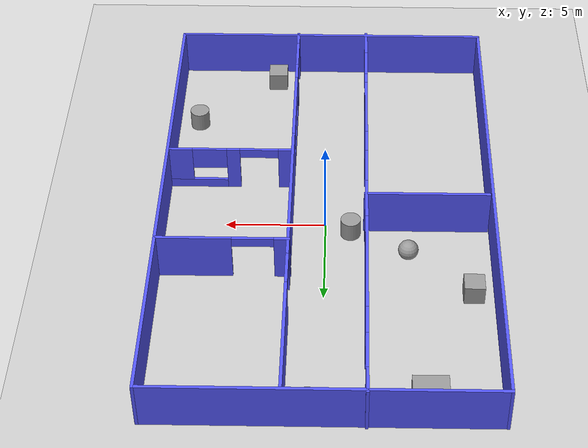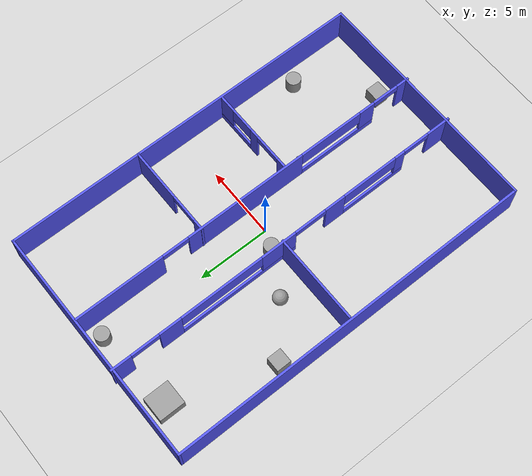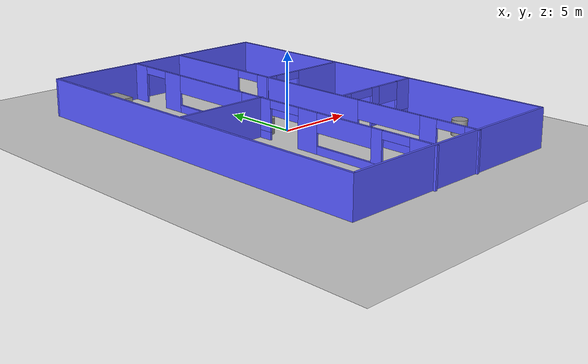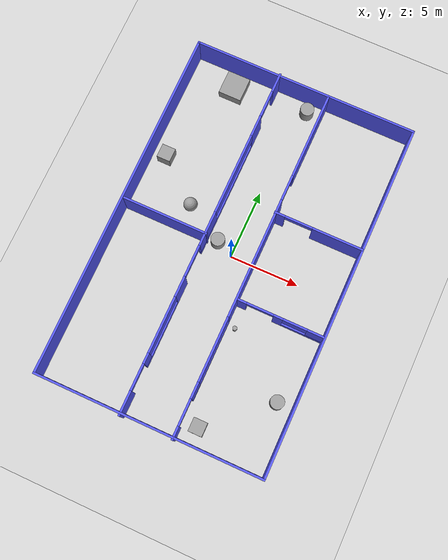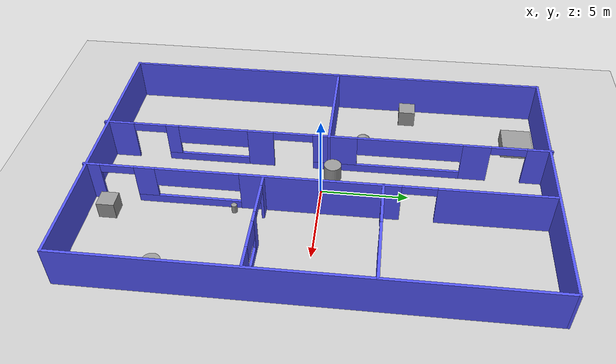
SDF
<sdf version="1.6">
 <world name="default">
  <light name="sun" type="directional">
   <pose>0 0 10 0 -0 0</pose>
   <diffuse>0.8 0.8 0.8 1</diffuse>
   <specular>0.1 0.1 0.1 1</specular>
   <attenuation>
    <range>1000</range>
    <constant>0.9</constant>
    <linear>0.01</linear>
    <quadratic>0.001</quadratic>
   </attenuation>
   <direction>-0.5 0.5 -1</direction>
  </light>
  <model name="ground_plane">
   <static>1</static>
   <link name="link">
    <collision name="collision">
     <geometry><plane><normal>0 0 1</normal><size>100 100</size></plane></geometry>
     <surface><friction><ode><mu>100</mu><mu2>50</mu2></ode></friction></surface>
    </collision>
    <visual name="visual">
     <cast_shadows>0</cast_shadows>
     <geometry><plane><normal>0 0 1</normal><size>100 100</size></plane></geometry>
     <material>
      <script><uri>file://media/materials/scripts/gazebo.material</uri><name>Gazebo/Grey</name></script>
     </material>
    </visual>
   </link>
  </model>
  <gravity>0 0 -9.8</gravity>
  <magnetic_field>6e-06 2.3e-05 -4.2e-05</magnetic_field>
  <atmosphere type="adiabatic"/>
  <physics name="default_physics" default="0" type="ode">
   <max_step_size>0.001</max_step_size>
   <real_time_factor>1</real_time_factor>
   <real_time_update_rate>1000</real_time_update_rate>
  </physics>
  <scene><ambient>0.4 0.4 0.4 1</ambient><background>0.7 0.7 0.7 1</background><shadows>1</shadows></scene>
  <spherical_coordinates>
   <surface_model>EARTH_WGS84</surface_model>
   <latitude_deg>0</latitude_deg>
   <longitude_deg>0</longitude_deg>
   <elevation>0</elevation>
   <heading_deg>0</heading_deg>
  </spherical_coordinates>
  <model name="lab2_model">
   <pose>-0.0842 -0.070064 0 0 -0 0</pose>
   <link name="Wall_15">
    <collision name="Wall_15_Collision">
     <geometry><box><size>25.75 0.15 2.5</size></box></geometry>
     <pose>0 0 1.25 0 -0 0</pose>
    </collision>
    <visual name="Wall_15_Visual">
     <pose>0 0 1.25 0 -0 0</pose>
     <geometry><box><size>25.75 0.15 2.5</size></box></geometry>
     <material>
      <script><uri>file://media/materials/scripts/gazebo.material</uri><name>Gazebo/Grey</name></script>
      <ambient>0.333333 0.345098 1 1</ambient>
     </material>
    </visual>
    <pose>-8.175 0.028249 0 0 0 -1.5708</pose>
   </link>
   <link name="Wall_16">
    <collision name="Wall_16_Collision">
     <geometry><box><size>16.5 0.15 2.5</size></box></geometry>
     <pose>0 0 1.25 0 -0 0</pose>
    </collision>
    <visual name="Wall_16_Visual">
     <pose>0 0 1.25 0 -0 0</pose>
     <geometry><box><size>16.5 0.15 2.5</size></box></geometry>
     <material>
      <script><uri>file://media/materials/scripts/gazebo.material</uri><name>Gazebo/Grey</name></script>
      <ambient>0.333333 0.345098 1 1</ambient>
     </material>
    </visual>
    <pose>0 -12.7718 0 0 -0 0</pose>
   </link>
   <link name="Wall_17">
    <collision name="Wall_17_Collision">
     <geometry><box><size>25.75 0.15 2.5</size></box></geometry>
     <pose>0 0 1.25 0 -0 0</pose>
    </collision>
    <visual name="Wall_17_Visual">
     <pose>0 0 1.25 0 -0 0</pose>
     <geometry><box><size>25.75 0.15 2.5</size></box></geometry>
     <material>
      <script><uri>file://media/materials/scripts/gazebo.material</uri><name>Gazebo/Grey</name></script>
      <ambient>0.333333 0.345098 1 1</ambient>
     </material>
    </visual>
    <pose>8.175 0.028249 0 0 -0 1.5708</pose>
   </link>
   <link name="Wall_18">
    <collision name="Wall_18_Collision">
     <geometry><box><size>16.5 0.15 2.5</size></box></geometry>
     <pose>0 0 1.25 0 -0 0</pose>
    </collision>
    <visual name="Wall_18_Visual">
     <pose>0 0 1.25 0 -0 0</pose>
     <geometry><box><size>16.5 0.15 2.5</size></box></geometry>
     <material>
      <script><uri>file://media/materials/scripts/gazebo.material</uri><name>Gazebo/Grey</name></script>
      <ambient>0.333333 0.345098 1 1</ambient>
     </material>
    </visual>
    <pose>0 12.8282 0 0 -0 3.14159</pose>
   </link>
   <link name="Wall_21">
    <pose>-1.95301 0 0 0 0 -1.5708</pose>
    <visual name="Wall_21_Visual_0">
     <pose>-12.2719 0 1.25 0 -0 0</pose>
     <geometry><box><size>1.45614 0.15 2.5</size></box></geometry>
     <material>
      <script><uri>file://media/materials/scripts/gazebo.material</uri><name>Gazebo/Grey</name></script>
      <ambient>0.333333 0.345098 1 1</ambient>
     </material>
    </visual>
    <collision name="Wall_21_Collision_0">
     <geometry><box><size>1.45614 0.15 2.5</size></box></geometry>
     <pose>-12.2719 0 1.25 0 -0 0</pose>
    </collision>
    <visual name="Wall_21_Visual_1">
     <pose>-8.7536 0 1.25 0 -0 0</pose>
     <geometry><box><size>1.58545 0.15 2.5</size></box></geometry>
     <material>
      <script><uri>file://media/materials/scripts/gazebo.material</uri><name>Gazebo/Grey</name></script>
      <ambient>0.333333 0.345098 1 1</ambient>
     </material>
    </visual>
    <collision name="Wall_21_Collision_1">
     <geometry><box><size>1.58545 0.15 2.5</size></box></geometry>
     <pose>-8.7536 0 1.25 0 -0 0</pose>
    </collision>
    <visual name="Wall_21_Visual_2">
     <pose>3.69169 0 1.25 0 -0 0</pose>
     <geometry><box><size>1.51472 0.15 2.5</size></box></geometry>
     <material>
      <script><uri>file://media/materials/scripts/gazebo.material</uri><name>Gazebo/Grey</name></script>
      <ambient>0.333333 0.345098 1 1</ambient>
     </material>
    </visual>
    <collision name="Wall_21_Collision_2">
     <geometry><box><size>1.51472 0.15 2.5</size></box></geometry>
     <pose>3.69169 0 1.25 0 -0 0</pose>
    </collision>
    <visual name="Wall_21_Visual_3">
     <pose>12.1038 0 1.25 0 -0 0</pose>
     <geometry><box><size>1.79243 0.15 2.5</size></box></geometry>
     <material>
      <script><uri>file://media/materials/scripts/gazebo.material</uri><name>Gazebo/Grey</name></script>
      <ambient>0.333333 0.345098 1 1</ambient>
     </material>
    </visual>
    <collision name="Wall_21_Collision_3">
     <geometry><box><size>1.79243 0.15 2.5</size></box></geometry>
     <pose>12.1038 0 1.25 0 -0 0</pose>
    </collision>
    <visual name="Wall_21_Visual_4">
     <pose>-3.67274 0 0.25 0 -0 0</pose>
     <geometry><box><size>8.57627 0.15 0.5</size></box></geometry>
     <material>
      <script><uri>file://media/materials/scripts/gazebo.material</uri><name>Gazebo/Grey</name></script>
      <ambient>0.333333 0.345098 1 1</ambient>
     </material>
    </visual>
    <collision name="Wall_21_Collision_4">
     <geometry><box><size>8.57627 0.15 0.5</size></box></geometry>
     <pose>-3.67274 0 0.25 0 -0 0</pose>
    </collision>
    <visual name="Wall_21_Visual_5">
     <pose>6.87291 0 0.25 0 -0 0</pose>
     <geometry><box><size>4.84771 0.15 0.5</size></box></geometry>
     <material>
      <script><uri>file://media/materials/scripts/gazebo.material</uri><name>Gazebo/Grey</name></script>
      <ambient>0.333333 0.345098 1 1</ambient>
     </material>
    </visual>
    <collision name="Wall_21_Collision_5">
     <geometry><box><size>4.84771 0.15 0.5</size></box></geometry>
     <pose>6.87291 0 0.25 0 -0 0</pose>
    </collision>
    <visual name="Wall_21_Visual_6">
     <pose>-0.672049 0 1.5 0 -0 0</pose>
     <geometry><box><size>2.57487 0.15 2</size></box></geometry>
     <material>
      <script><uri>file://media/materials/scripts/gazebo.material</uri><name>Gazebo/Grey</name></script>
      <ambient>0.333333 0.345098 1 1</ambient>
     </material>
    </visual>
    <collision name="Wall_21_Collision_6">
     <geometry><box><size>2.57487 0.15 2</size></box></geometry>
     <pose>-0.672049 0 1.5 0 -0 0</pose>
    </collision>
    <visual name="Wall_21_Visual_7">
     <pose>-0.672049 0 1.5 0 -0 0</pose>
     <geometry><box><size>2.57487 0.15 2</size></box></geometry>
     <material>
      <script><uri>file://media/materials/scripts/gazebo.material</uri><name>Gazebo/Grey</name></script>
      <ambient>0.333333 0.345098 1 1</ambient>
     </material>
    </visual>
    <collision name="Wall_21_Collision_7">
     <geometry><box><size>2.57487 0.15 2</size></box></geometry>
     <pose>-0.672049 0 1.5 0 -0 0</pose>
    </collision>
    <visual name="Wall_21_Visual_8">
     <pose>8.91518 0 1.5 0 -0 0</pose>
     <geometry><box><size>0.763166 0.15 2</size></box></geometry>
     <material>
      <script><uri>file://media/materials/scripts/gazebo.material</uri><name>Gazebo/Grey</name></script>
      <ambient>0.333333 0.345098 1 1</ambient>
     </material>
    </visual>
    <collision name="Wall_21_Collision_8">
     <geometry><box><size>0.763166 0.15 2</size></box></geometry>
     <pose>8.91518 0 1.5 0 -0 0</pose>
    </collision>
    <visual name="Wall_21_Visual_9">
     <pose>-4.96018 0 1.9 0 -0 0</pose>
     <geometry><box><size>6.00139 0.15 1.2</size></box></geometry>
     <material>
      <script><uri>file://media/materials/scripts/gazebo.material</uri><name>Gazebo/Grey</name></script>
      <ambient>0.333333 0.345098 1 1</ambient>
     </material>
    </visual>
    <collision name="Wall_21_Collision_9">
     <geometry><box><size>6.00139 0.15 1.2</size></box></geometry>
     <pose>-4.96018 0 1.9 0 -0 0</pose>
    </collision>
    <visual name="Wall_21_Visual_10">
     <pose>6.49132 0 1.9 0 -0 0</pose>
     <geometry><box><size>4.08455 0.15 1.2</size></box></geometry>
     <material>
      <script><uri>file://media/materials/scripts/gazebo.material</uri><name>Gazebo/Grey</name></script>
      <ambient>0.333333 0.345098 1 1</ambient>
     </material>
    </visual>
    <collision name="Wall_21_Collision_10">
     <geometry><box><size>4.08455 0.15 1.2</size></box></geometry>
     <pose>6.49132 0 1.9 0 -0 0</pose>
    </collision>
    <visual name="Wall_21_Visual_11">
     <pose>-10.5451 0 2.25 0 -0 0</pose>
     <geometry><box><size>1.99753 0.15 0.5</size></box></geometry>
     <material>
      <script><uri>file://media/materials/scripts/gazebo.material</uri><name>Gazebo/Grey</name></script>
      <ambient>0.333333 0.345098 1 1</ambient>
     </material>
    </visual>
    <collision name="Wall_21_Collision_11">
     <geometry><box><size>1.99753 0.15 0.5</size></box></geometry>
     <pose>-10.5451 0 2.25 0 -0 0</pose>
    </collision>
    <visual name="Wall_21_Visual_12">
     <pose>1.77486 0 2.25 0 -0 0</pose>
     <geometry><box><size>2.31895 0.15 0.5</size></box></geometry>
     <material>
      <script><uri>file://media/materials/scripts/gazebo.material</uri><name>Gazebo/Grey</name></script>
      <ambient>0.333333 0.345098 1 1</ambient>
     </material>
    </visual>
    <collision name="Wall_21_Collision_12">
     <geometry><box><size>2.31895 0.15 0.5</size></box></geometry>
     <pose>1.77486 0 2.25 0 -0 0</pose>
    </collision>
    <visual name="Wall_21_Visual_13">
     <pose>1.77486 0 2.25 0 -0 0</pose>
     <geometry><box><size>2.31895 0.15 0.5</size></box></geometry>
     <material>
      <script><uri>file://media/materials/scripts/gazebo.material</uri><name>Gazebo/Grey</name></script>
      <ambient>0.333333 0.345098 1 1</ambient>
     </material>
    </visual>
    <collision name="Wall_21_Collision_13">
     <geometry><box><size>2.31895 0.15 0.5</size></box></geometry>
     <pose>1.77486 0 2.25 0 -0 0</pose>
    </collision>
    <visual name="Wall_21_Visual_14">
     <pose>10.2522 0 2.25 0 -0 0</pose>
     <geometry><box><size>1.91081 0.15 0.5</size></box></geometry>
     <material>
      <script><uri>file://media/materials/scripts/gazebo.material</uri><name>Gazebo/Grey</name></script>
      <ambient>0.333333 0.345098 1 1</ambient>
     </material>
    </visual>
    <collision name="Wall_21_Collision_14">
     <geometry><box><size>1.91081 0.15 0.5</size></box></geometry>
     <pose>10.2522 0 2.25 0 -0 0</pose>
    </collision>
   </link>
   <link name="Wall_23">
    <pose>1.80375 -0.085195 0 0 0 -1.5708</pose>
    <visual name="Wall_23_Visual_0">
     <pose>-9.72078 0 1.25 0 -0 0</pose>
     <geometry><box><size>6.30844 0.15 2.5</size></box></geometry>
     <material>
      <script><uri>file://media/materials/scripts/gazebo.material</uri><name>Gazebo/Grey</name></script>
      <ambient>0.333333 0.345098 1 1</ambient>
     </material>
    </visual>
    <collision name="Wall_23_Collision_0">
     <geometry><box><size>6.30844 0.15 2.5</size></box></geometry>
     <pose>-9.72078 0 1.25 0 -0 0</pose>
    </collision>
    <visual name="Wall_23_Visual_1">
     <pose>-0.262365 0 1.25 0 -0 0</pose>
     <geometry><box><size>8.80787 0.15 2.5</size></box></geometry>
     <material>
      <script><uri>file://media/materials/scripts/gazebo.material</uri><name>Gazebo/Grey</name></script>
      <ambient>0.333333 0.345098 1 1</ambient>
     </material>
    </visual>
    <collision name="Wall_23_Collision_1">
     <geometry><box><size>8.80787 0.15 2.5</size></box></geometry>
     <pose>-0.262365 0 1.25 0 -0 0</pose>
    </collision>
    <visual name="Wall_23_Visual_2">
     <pose>12.3876 0 1.25 0 -0 0</pose>
     <geometry><box><size>0.974753 0.15 2.5</size></box></geometry>
     <material>
      <script><uri>file://media/materials/scripts/gazebo.material</uri><name>Gazebo/Grey</name></script>
      <ambient>0.333333 0.345098 1 1</ambient>
     </material>
    </visual>
    <collision name="Wall_23_Collision_2">
     <geometry><box><size>0.974753 0.15 2.5</size></box></geometry>
     <pose>12.3876 0 1.25 0 -0 0</pose>
    </collision>
    <visual name="Wall_23_Visual_3">
     <pose>7.0655 0 0.25 0 -0 0</pose>
     <geometry><box><size>5.84787 0.15 0.5</size></box></geometry>
     <material>
      <script><uri>file://media/materials/scripts/gazebo.material</uri><name>Gazebo/Grey</name></script>
      <ambient>0.333333 0.345098 1 1</ambient>
     </material>
    </visual>
    <collision name="Wall_23_Collision_3">
     <geometry><box><size>5.84787 0.15 0.5</size></box></geometry>
     <pose>7.0655 0 0.25 0 -0 0</pose>
    </collision>
    <visual name="Wall_23_Visual_4">
     <pose>9.40269 0 1.5 0 -0 0</pose>
     <geometry><box><size>1.17349 0.15 2</size></box></geometry>
     <material>
      <script><uri>file://media/materials/scripts/gazebo.material</uri><name>Gazebo/Grey</name></script>
      <ambient>0.333333 0.345098 1 1</ambient>
     </material>
    </visual>
    <collision name="Wall_23_Collision_4">
     <geometry><box><size>1.17349 0.15 2</size></box></geometry>
     <pose>9.40269 0 1.5 0 -0 0</pose>
    </collision>
    <visual name="Wall_23_Visual_5">
     <pose>6.47876 0 1.9 0 -0 0</pose>
     <geometry><box><size>4.67438 0.15 1.2</size></box></geometry>
     <material>
      <script><uri>file://media/materials/scripts/gazebo.material</uri><name>Gazebo/Grey</name></script>
      <ambient>0.333333 0.345098 1 1</ambient>
     </material>
    </visual>
    <collision name="Wall_23_Collision_5">
     <geometry><box><size>4.67438 0.15 1.2</size></box></geometry>
     <pose>6.47876 0 1.9 0 -0 0</pose>
    </collision>
    <visual name="Wall_23_Visual_6">
     <pose>-5.61643 0 2.25 0 -0 0</pose>
     <geometry><box><size>1.90026 0.15 0.5</size></box></geometry>
     <material>
      <script><uri>file://media/materials/scripts/gazebo.material</uri><name>Gazebo/Grey</name></script>
      <ambient>0.333333 0.345098 1 1</ambient>
     </material>
    </visual>
    <collision name="Wall_23_Collision_6">
     <geometry><box><size>1.90026 0.15 0.5</size></box></geometry>
     <pose>-5.61643 0 2.25 0 -0 0</pose>
    </collision>
    <visual name="Wall_23_Visual_7">
     <pose>10.9448 0 2.25 0 -0 0</pose>
     <geometry><box><size>1.91081 0.15 0.5</size></box></geometry>
     <material>
      <script><uri>file://media/materials/scripts/gazebo.material</uri><name>Gazebo/Grey</name></script>
      <ambient>0.333333 0.345098 1 1</ambient>
     </material>
    </visual>
    <collision name="Wall_23_Collision_7">
     <geometry><box><size>1.91081 0.15 0.5</size></box></geometry>
     <pose>10.9448 0 2.25 0 -0 0</pose>
    </collision>
   </link>
   <link name="Wall_25">
    <collision name="Wall_25_Collision">
     <geometry><box><size>6.25 0.15 2.5</size></box></geometry>
     <pose>0 0 1.25 0 -0 0</pose>
    </collision>
    <visual name="Wall_25_Visual">
     <pose>0 0 1.25 0 -0 0</pose>
     <geometry><box><size>6.25 0.15 2.5</size></box></geometry>
     <material>
      <script><uri>file://media/materials/scripts/gazebo.material</uri><name>Gazebo/Grey</name></script>
      <ambient>0.333333 0.345098 1 1</ambient>
     </material>
    </visual>
    <pose>-4.94341 0.321619 0 0 -0 0</pose>
   </link>
   <link name="Wall_27">
    <pose>4.94966 3.60408 0 0 -0 0</pose>
    <visual name="Wall_27_Visual_0">
     <pose>-2.85668 0 1.25 0 -0 0</pose>
     <geometry><box><size>0.786634 0.15 2.5</size></box></geometry>
     <material>
      <script><uri>file://media/materials/scripts/gazebo.material</uri><name>Gazebo/Grey</name></script>
      <ambient>0.333333 0.345098 1 1</ambient>
     </material>
    </visual>
    <collision name="Wall_27_Collision_0">
     <geometry><box><size>0.786634 0.15 2.5</size></box></geometry>
     <pose>-2.85668 0 1.25 0 -0 0</pose>
    </collision>
    <visual name="Wall_27_Visual_1">
     <pose>1.40508 0 1.25 0 -0 0</pose>
     <geometry><box><size>3.68983 0.15 2.5</size></box></geometry>
     <material>
      <script><uri>file://media/materials/scripts/gazebo.material</uri><name>Gazebo/Grey</name></script>
      <ambient>0.333333 0.345098 1 1</ambient>
     </material>
    </visual>
    <collision name="Wall_27_Collision_1">
     <geometry><box><size>3.68983 0.15 2.5</size></box></geometry>
     <pose>1.40508 0 1.25 0 -0 0</pose>
    </collision>
    <visual name="Wall_27_Visual_2">
     <pose>-1.4516 0 2.25 0 -0 0</pose>
     <geometry><box><size>2.02353 0.15 0.5</size></box></geometry>
     <material>
      <script><uri>file://media/materials/scripts/gazebo.material</uri><name>Gazebo/Grey</name></script>
      <ambient>0.333333 0.345098 1 1</ambient>
     </material>
    </visual>
    <collision name="Wall_27_Collision_2">
     <geometry><box><size>2.02353 0.15 0.5</size></box></geometry>
     <pose>-1.4516 0 2.25 0 -0 0</pose>
    </collision>
   </link>
   <link name="Wall_29">
    <pose>5.01146 -2.88798 0 0 -0 0</pose>
    <visual name="Wall_29_Visual_0">
     <pose>-2.79883 0 1.25 0 -0 0</pose>
     <geometry><box><size>0.652341 0.15 2.5</size></box></geometry>
     <material>
      <script><uri>file://media/materials/scripts/gazebo.material</uri><name>Gazebo/Grey</name></script>
      <ambient>0.333333 0.345098 1 1</ambient>
     </material>
    </visual>
    <collision name="Wall_29_Collision_0">
     <geometry><box><size>0.652341 0.15 2.5</size></box></geometry>
     <pose>-2.79883 0 1.25 0 -0 0</pose>
    </collision>
    <visual name="Wall_29_Visual_1">
     <pose>-0.182426 0 1.25 0 -0 0</pose>
     <geometry><box><size>0.6736 0.15 2.5</size></box></geometry>
     <material>
      <script><uri>file://media/materials/scripts/gazebo.material</uri><name>Gazebo/Grey</name></script>
      <ambient>0.333333 0.345098 1 1</ambient>
     </material>
    </visual>
    <collision name="Wall_29_Collision_1">
     <geometry><box><size>0.6736 0.15 2.5</size></box></geometry>
     <pose>-0.182426 0 1.25 0 -0 0</pose>
    </collision>
    <visual name="Wall_29_Visual_2">
     <pose>1.63969 0 0.25 0 -0 0</pose>
     <geometry><box><size>2.97063 0.15 0.5</size></box></geometry>
     <material>
      <script><uri>file://media/materials/scripts/gazebo.material</uri><name>Gazebo/Grey</name></script>
      <ambient>0.333333 0.345098 1 1</ambient>
     </material>
    </visual>
    <collision name="Wall_29_Collision_2">
     <geometry><box><size>2.97063 0.15 0.5</size></box></geometry>
     <pose>1.63969 0 0.25 0 -0 0</pose>
    </collision>
    <visual name="Wall_29_Visual_3">
     <pose>2.51116 0 1.5 0 -0 0</pose>
     <geometry><box><size>1.22768 0.15 2</size></box></geometry>
     <material>
      <script><uri>file://media/materials/scripts/gazebo.material</uri><name>Gazebo/Grey</name></script>
      <ambient>0.333333 0.345098 1 1</ambient>
     </material>
    </visual>
    <collision name="Wall_29_Collision_3">
     <geometry><box><size>1.22768 0.15 2</size></box></geometry>
     <pose>2.51116 0 1.5 0 -0 0</pose>
    </collision>
    <visual name="Wall_29_Visual_4">
     <pose>1.02584 0 1.9 0 -0 0</pose>
     <geometry><box><size>1.74294 0.15 1.2</size></box></geometry>
     <material>
      <script><uri>file://media/materials/scripts/gazebo.material</uri><name>Gazebo/Grey</name></script>
      <ambient>0.333333 0.345098 1 1</ambient>
     </material>
    </visual>
    <collision name="Wall_29_Collision_4">
     <geometry><box><size>1.74294 0.15 1.2</size></box></geometry>
     <pose>1.02584 0 1.9 0 -0 0</pose>
    </collision>
    <visual name="Wall_29_Visual_5">
     <pose>-1.49594 0 2.25 0 -0 0</pose>
     <geometry><box><size>1.95343 0.15 0.5</size></box></geometry>
     <material>
      <script><uri>file://media/materials/scripts/gazebo.material</uri><name>Gazebo/Grey</name></script>
      <ambient>0.333333 0.345098 1 1</ambient>
     </material>
    </visual>
    <collision name="Wall_29_Collision_5">
     <geometry><box><size>1.95343 0.15 0.5</size></box></geometry>
     <pose>-1.49594 0 2.25 0 -0 0</pose>
    </collision>
   </link>
   <static>1</static>
  </model>
  <model name="unit_box_0">
   <pose>2.81686 -11.5656 0.5 0 -0 0</pose>
   <link name="link">
    <inertial>
     <mass>1</mass>
     <inertia>
      <ixx>0.166667</ixx>
      <ixy>0</ixy>
      <ixz>0</ixz>
      <iyy>0.166667</iyy>
      <iyz>0</iyz>
      <izz>0.166667</izz>
     </inertia>
    </inertial>
    <collision name="collision"><geometry><box><size>1 1 1</size></box></geometry></collision>
    <visual name="visual">
     <geometry><box><size>1 1 1</size></box></geometry>
     <material>
      <script><name>Gazebo/Grey</name><uri>file://media/materials/scripts/gazebo.material</uri></script>
     </material>
    </visual>
   </link>
  </model>
  <model name="unit_cylinder_0">
   <pose>2.33567 -4.57487 0.5 0 -0 0</pose>
   <link name="link">
    <inertial>
     <mass>1</mass>
     <inertia><ixx>0.145833</ixx><ixy>0</ixy><ixz>0</ixz><iyy>0.145833</iyy><iyz>0</iyz><izz>0.125</izz></inertia>
    </inertial>
    <collision name="collision">
     <geometry><cylinder><radius>0.157948</radius><length>0.510576</length></cylinder></geometry>
    </collision>
    <visual name="visual">
     <geometry><cylinder><radius>0.157948</radius><length>0.510576</length></cylinder></geometry>
     <material>
      <script><name>Gazebo/Grey</name><uri>file://media/materials/scripts/gazebo.material</uri></script>
     </material>
    </visual>
   </link>
  </model>
  <model name="unit_box_1">
   <pose>-7.18735 4.76244 0.5 0 -0 0</pose>
   <link name="link">
    <inertial>
     <mass>1</mass>
     <inertia>
      <ixx>0.166667</ixx>
      <ixy>0</ixy>
      <ixz>0</ixz>
      <iyy>0.166667</iyy>
      <iyz>0</iyz>
      <izz>0.166667</izz>
     </inertia>
    </inertial>
    <collision name="collision"><geometry><box><size>1 1 1</size></box></geometry></collision>
    <visual name="visual">
     <geometry><box><size>1 1 1</size></box></geometry>
     <material>
      <script><name>Gazebo/Grey</name><uri>file://media/materials/scripts/gazebo.material</uri></script>
     </material>
    </visual>
   </link>
  </model>
  <model name="unit_cylinder_1">
   <pose>-1.26483 0.554574 0.5 0 -0 0</pose>
   <link name="link">
    <inertial>
     <mass>1</mass>
     <inertia><ixx>0.145833</ixx><ixy>0</ixy><ixz>0</ixz><iyy>0.145833</iyy><iyz>0</iyz><izz>0.125</izz></inertia>
    </inertial>
    <collision name="collision">
     <geometry><cylinder><radius>0.5</radius><length>1</length></cylinder></geometry>
    </collision>
    <visual name="visual">
     <geometry><cylinder><radius>0.5</radius><length>1</length></cylinder></geometry>
     <material>
      <script><name>Gazebo/Grey</name><uri>file://media/materials/scripts/gazebo.material</uri></script>
     </material>
    </visual>
   </link>
  </model>
  <model name="unit_cylinder_2">
   <pose>6.93616 -7.92986 0.5 0 -0 0</pose>
   <link name="link">
    <inertial>
     <mass>1</mass>
     <inertia><ixx>0.145833</ixx><ixy>0</ixy><ixz>0</ixz><iyy>0.145833</iyy><iyz>0</iyz><izz>0.125</izz></inertia>
    </inertial>
    <collision name="collision">
     <geometry><cylinder><radius>0.5</radius><length>1</length></cylinder></geometry>
    </collision>
    <visual name="visual">
     <geometry><cylinder><radius>0.5</radius><length>1</length></cylinder></geometry>
     <material>
      <script><name>Gazebo/Grey</name><uri>file://media/materials/scripts/gazebo.material</uri></script>
     </material>
    </visual>
   </link>
  </model>
  <model name="unit_sphere_0">
   <pose>-4.10748 2.16038 0.5 0 -0 0</pose>
   <link name="link">
    <inertial>
     <mass>1</mass>
     <inertia><ixx>0.1</ixx><ixy>0</ixy><ixz>0</ixz><iyy>0.1</iyy><iyz>0</iyz><izz>0.1</izz></inertia>
    </inertial>
    <collision name="collision"><geometry><sphere><radius>0.5</radius></sphere></geometry></collision>
    <visual name="visual">
     <geometry><sphere><radius>0.5</radius></sphere></geometry>
     <material>
      <script><name>Gazebo/Grey</name><uri>file://media/materials/scripts/gazebo.material</uri></script>
     </material>
    </visual>
   </link>
  </model>
  <model name="unit_cylinder_3">
   <pose>0.605411 11.887 0.5 0 -0 0</pose>
   <link name="link">
    <inertial>
     <mass>1</mass>
     <inertia><ixx>0.145833</ixx><ixy>0</ixy><ixz>0</ixz><iyy>0.145833</iyy><iyz>0</iyz><izz>0.125</izz></inertia>
    </inertial>
    <collision name="collision">
     <geometry><cylinder><radius>0.5</radius><length>1</length></cylinder></geometry>
    </collision>
    <visual name="visual">
     <geometry><cylinder><radius>0.5</radius><length>1</length></cylinder></geometry>
     <material>
      <script><name>Gazebo/Grey</name><uri>file://media/materials/scripts/gazebo.material</uri></script>
     </material>
    </visual>
   </link>
  </model>
  <model name="unit_box_2">
   <pose>-4.89836 11.4255 0.5 0 -0 0</pose>
   <link name="link">
    <inertial>
     <mass>1</mass>
     <inertia>
      <ixx>0.166667</ixx>
      <ixy>0</ixy>
      <ixz>0</ixz>
      <iyy>0.166667</iyy>
      <iyz>0</iyz>
      <izz>0.166667</izz>
     </inertia>
    </inertial>
    <collision name="collision"><geometry><box><size>1.67454 1.76719 0.788597</size></box></geometry></collision>
    <visual name="visual">
     <geometry><box><size>1.67454 1.76719 0.788597</size></box></geometry>
     <material>
      <script><name>Gazebo/Grey</name><uri>file://media/materials/scripts/gazebo.material</uri></script>
     </material>
    </visual>
   </link>
  </model>
 </world>
</sdf>
